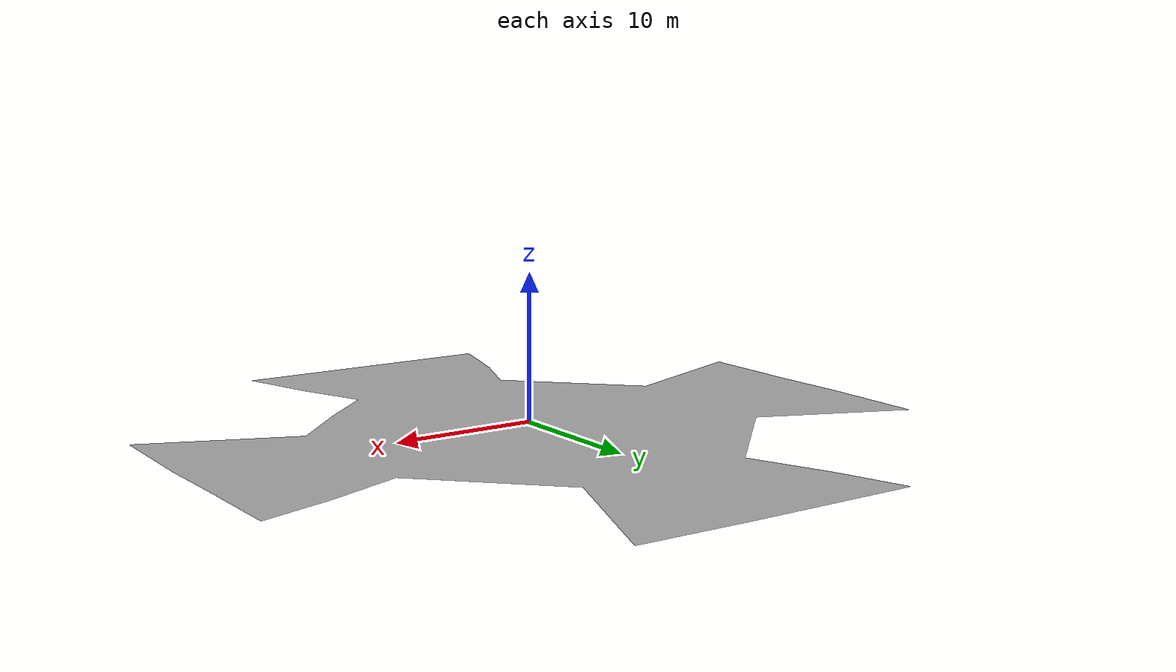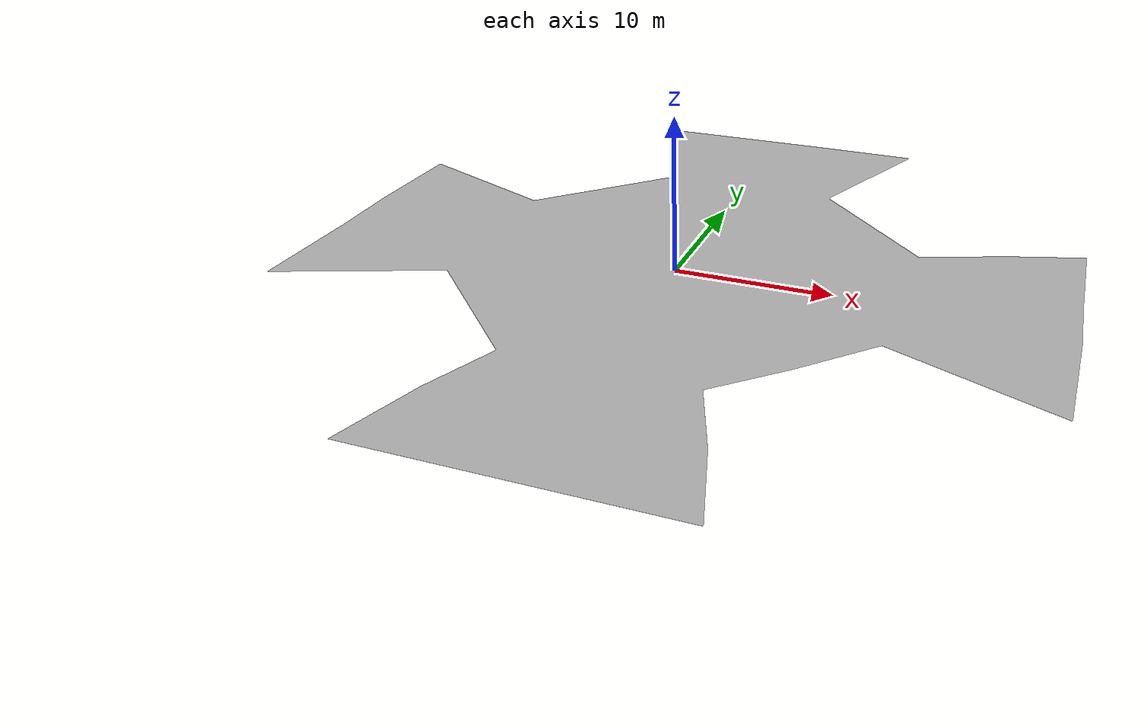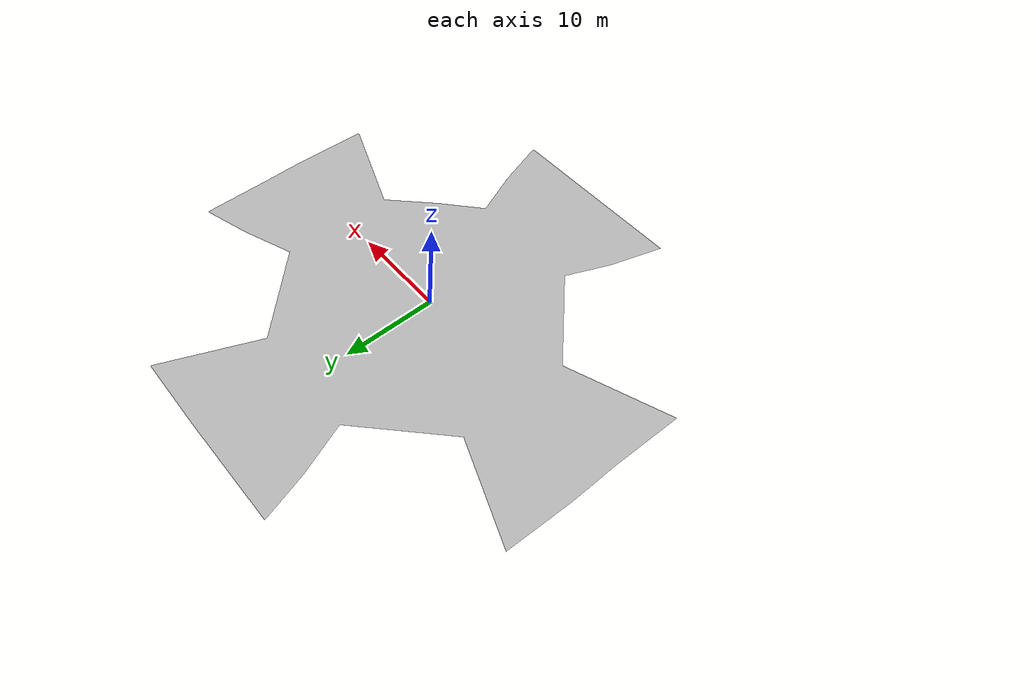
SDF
<?xml version="1.0" ?>
<sdf version="1.5">
  <model name="arena_hawker_centre_floor">
    <pose>0 0 0 0 0 0</pose>
    <static>true</static>
    <link name="body">
      <visual name="visual">
        <geometry>
          <mesh><uri>model://arena_hawker_centre_floor/media/arena_hawker_centre_floor.dae</uri></mesh>
        </geometry>
	      <material>
          <script>
            <uri>model://arena_hawker_centre_floor/media/scripts</uri>
            <uri>model://arena_hawker_centre_floor/media/Textures</uri>
            <name>arena_hawker_centre_floor</name>
          </script>
        </material>
      </visual>
      <collision name="collision">
        <geometry>
          <mesh><uri>model://arena_hawker_centre_floor/media/arena_hawker_centre_floor.dae</uri></mesh>
        </geometry>
      </collision>
    </link>
  </model>
</sdf>
